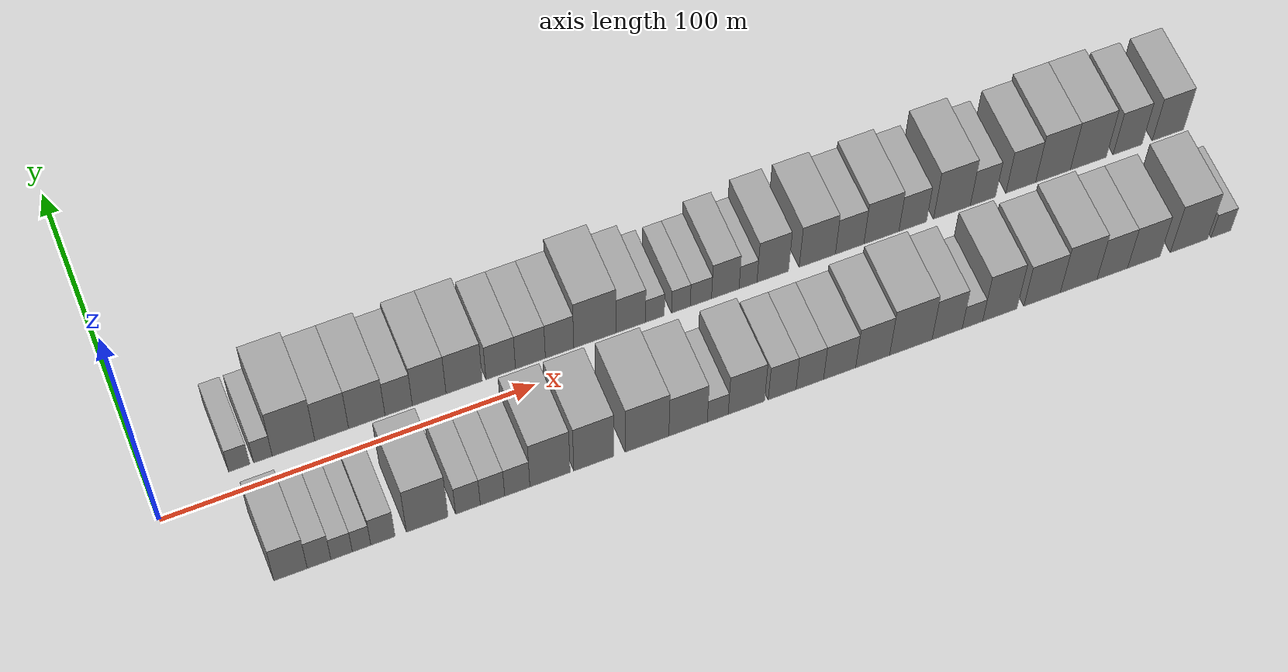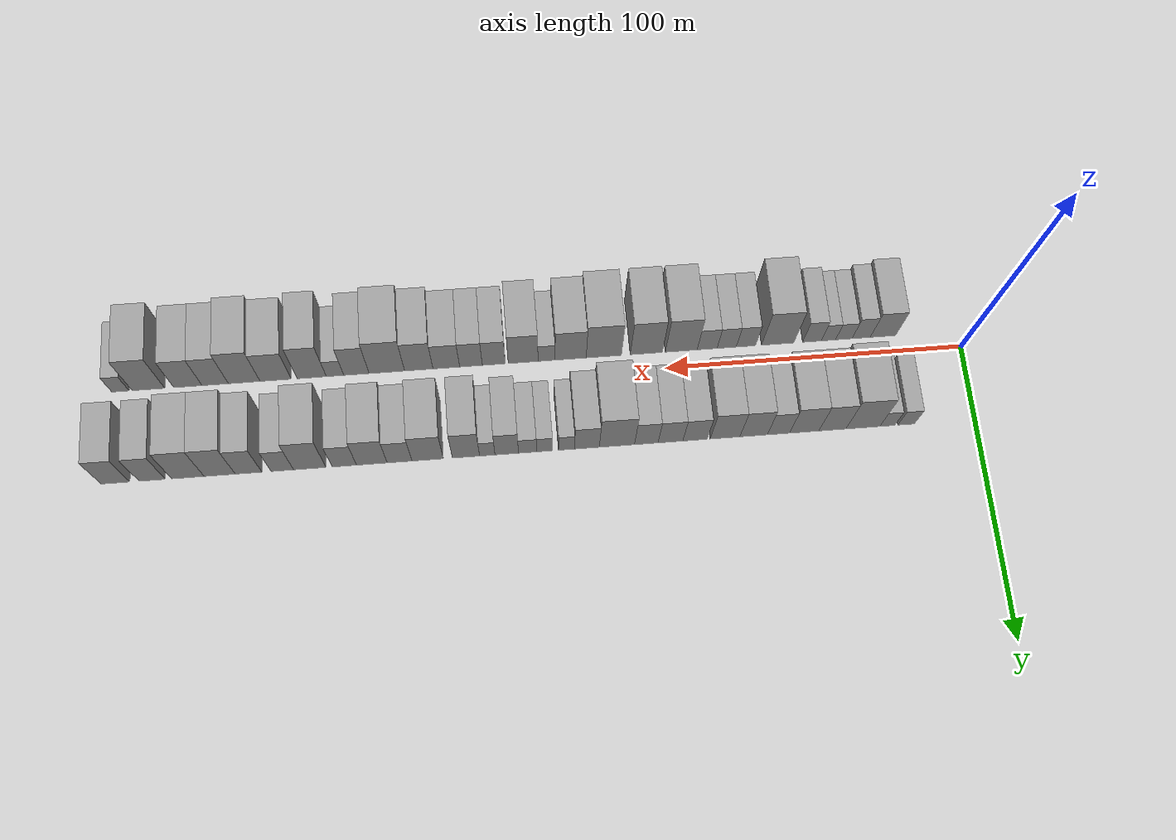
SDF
<sdf version="1.6">
 <world name="default">
  <scene>
   <sky><clouds><speed>12</speed></clouds></sky>
   <ambient>0.4 0.4 0.4 1</ambient>
   <background>0.7 0.7 0.7 1</background>
   <shadows>1</shadows>
  </scene>
  <gravity>0 0 -9.8066</gravity>
  <magnetic_field>6e-06 2.3e-05 -4.2e-05</magnetic_field>
  <physics default="0" name="default_physics" type="ode">
   <ode>
    <solver>
     <type>quick</type>
     <iters>10</iters>
     <sor>1.0</sor>
     <use_dynamic_moi_rescaling>0</use_dynamic_moi_rescaling>
    </solver>
    <constraints>
     <cfm>0</cfm>
     <erp>0.2</erp>
     <contact_max_correcting_vel>100</contact_max_correcting_vel>
     <contact_surface_layer>0.001</contact_surface_layer>
    </constraints>
   </ode>
   <max_step_size>0.004</max_step_size>
   <real_time_factor>1</real_time_factor>
   <real_time_update_rate>250</real_time_update_rate>
  </physics>
  <light name="sun" type="directional">
   <pose>0 0 10 0 0 0</pose>
   <diffuse>0.8 0.8 0.8 1</diffuse>
   <specular>0.2 0.2 0.2 1</specular>
   <attenuation>
    <range>1000</range>
    <constant>0.9</constant>
    <linear>0.01</linear>
    <quadratic>0.001</quadratic>
   </attenuation>
   <direction>-0.5 0.1 -0.9</direction>
  </light>
  <model name="building_1">
   <static>1</static>
   <pose>22.8053 16.0000 0 0.000000 0.000000 1.570796</pose>
   <link name="link">
    <pose>0 0 6.00 0 0 0</pose>
    <collision name="collision"><geometry><box><size>20.0000 5.6106 12.0000</size></box></geometry></collision>
    <visual name="visual">
     <cast_shadows>0</cast_shadows>
     <geometry><box><size>20.0000 5.6106 12.0000</size></box></geometry>
     <material>
      <script>
       <uri>model://grey_wall/materials/scripts</uri>
       <uri>model://grey_wall/materials/textures</uri>
       <name>vrc/grey_wall</name>
      </script>
     </material>
    </visual>
   </link>
  </model>
  <model name="building_2">
   <static>1</static>
   <pose>29.0822 16.0000 0 0.000000 0.000000 1.570796</pose>
   <link name="link">
    <pose>0 0 6.00 0 0 0</pose>
    <collision name="collision"><geometry><box><size>20.0000 4.9431 12.0000</size></box></geometry></collision>
    <visual name="visual">
     <cast_shadows>0</cast_shadows>
     <geometry><box><size>20.0000 4.9431 12.0000</size></box></geometry>
     <material>
      <script>
       <uri>model://grey_wall/materials/scripts</uri>
       <uri>model://grey_wall/materials/textures</uri>
       <name>vrc/grey_wall</name>
      </script>
     </material>
    </visual>
   </link>
  </model>
  <model name="building_3">
   <static>1</static>
   <pose>37.2110 16.0000 0 0.000000 0.000000 1.570796</pose>
   <link name="link">
    <pose>0 0 12.00 0 0 0</pose>
    <collision name="collision"><geometry><box><size>20.0000 11.3147 24.0000</size></box></geometry></collision>
    <visual name="visual">
     <cast_shadows>0</cast_shadows>
     <geometry><box><size>20.0000 11.3147 24.0000</size></box></geometry>
     <material>
      <script>
       <uri>model://grey_wall/materials/scripts</uri>
       <uri>model://grey_wall/materials/textures</uri>
       <name>vrc/grey_wall</name>
      </script>
     </material>
    </visual>
   </link>
  </model>
  <model name="building_4">
   <static>1</static>
   <pose>47.3726 16.0000 0 0.000000 0.000000 1.570796</pose>
   <link name="link">
    <pose>0 0 10.50 0 0 0</pose>
    <collision name="collision"><geometry><box><size>20.0000 9.0084 21.0000</size></box></geometry></collision>
    <visual name="visual">
     <cast_shadows>0</cast_shadows>
     <geometry><box><size>20.0000 9.0084 21.0000</size></box></geometry>
     <material>
      <script>
       <uri>model://grey_wall/materials/scripts</uri>
       <uri>model://grey_wall/materials/textures</uri>
       <name>vrc/grey_wall</name>
      </script>
     </material>
    </visual>
   </link>
  </model>
  <model name="building_5">
   <static>1</static>
   <pose>56.7563 16.0000 0 0.000000 0.000000 1.570796</pose>
   <link name="link">
    <pose>0 0 10.50 0 0 0</pose>
    <collision name="collision"><geometry><box><size>20.0000 9.7590 21.0000</size></box></geometry></collision>
    <visual name="visual">
     <cast_shadows>0</cast_shadows>
     <geometry><box><size>20.0000 9.7590 21.0000</size></box></geometry>
     <material>
      <script>
       <uri>model://grey_wall/materials/scripts</uri>
       <uri>model://grey_wall/materials/textures</uri>
       <name>vrc/grey_wall</name>
      </script>
     </material>
    </visual>
   </link>
  </model>
  <model name="building_6">
   <static>1</static>
   <pose>65.3125 16.0000 0 0.000000 0.000000 1.570796</pose>
   <link name="link">
    <pose>0 0 9.00 0 0 0</pose>
    <collision name="collision"><geometry><box><size>20.0000 7.3534 18.0000</size></box></geometry></collision>
    <visual name="visual">
     <cast_shadows>0</cast_shadows>
     <geometry><box><size>20.0000 7.3534 18.0000</size></box></geometry>
     <material>
      <script>
       <uri>model://grey_wall/materials/scripts</uri>
       <uri>model://grey_wall/materials/textures</uri>
       <name>vrc/grey_wall</name>
      </script>
     </material>
    </visual>
   </link>
  </model>
  <model name="building_7">
   <static>1</static>
   <pose>73.5317 16.0000 0 0.000000 0.000000 1.570796</pose>
   <link name="link">
    <pose>0 0 10.50 0 0 0</pose>
    <collision name="collision"><geometry><box><size>20.0000 9.0848 21.0000</size></box></geometry></collision>
    <visual name="visual">
     <cast_shadows>0</cast_shadows>
     <geometry><box><size>20.0000 9.0848 21.0000</size></box></geometry>
     <material>
      <script>
       <uri>model://grey_wall/materials/scripts</uri>
       <uri>model://grey_wall/materials/textures</uri>
       <name>vrc/grey_wall</name>
      </script>
     </material>
    </visual>
   </link>
  </model>
  <model name="building_8">
   <static>1</static>
   <pose>82.9801 16.0000 0 0.000000 0.000000 1.570796</pose>
   <link name="link">
    <pose>0 0 10.50 0 0 0</pose>
    <collision name="collision"><geometry><box><size>20.0000 9.8120 21.0000</size></box></geometry></collision>
    <visual name="visual">
     <cast_shadows>0</cast_shadows>
     <geometry><box><size>20.0000 9.8120 21.0000</size></box></geometry>
     <material>
      <script>
       <uri>model://grey_wall/materials/scripts</uri>
       <uri>model://grey_wall/materials/textures</uri>
       <name>vrc/grey_wall</name>
      </script>
     </material>
    </visual>
   </link>
  </model>
  <model name="building_9">
   <static>1</static>
   <pose>92.9071 16.0000 0 0.000000 0.000000 1.570796</pose>
   <link name="link">
    <pose>0 0 9.00 0 0 0</pose>
    <collision name="collision"><geometry><box><size>20.0000 8.0420 18.0000</size></box></geometry></collision>
    <visual name="visual">
     <cast_shadows>0</cast_shadows>
     <geometry><box><size>20.0000 8.0420 18.0000</size></box></geometry>
     <material>
      <script>
       <uri>model://grey_wall/materials/scripts</uri>
       <uri>model://grey_wall/materials/textures</uri>
       <name>vrc/grey_wall</name>
      </script>
     </material>
    </visual>
   </link>
  </model>
  <model name="building_10">
   <static>1</static>
   <pose>101.0149 16.0000 0 0.000000 0.000000 1.570796</pose>
   <link name="link">
    <pose>0 0 9.00 0 0 0</pose>
    <collision name="collision"><geometry><box><size>20.0000 8.1736 18.0000</size></box></geometry></collision>
    <visual name="visual">
     <cast_shadows>0</cast_shadows>
     <geometry><box><size>20.0000 8.1736 18.0000</size></box></geometry>
     <material>
      <script>
       <uri>model://grey_wall/materials/scripts</uri>
       <uri>model://grey_wall/materials/textures</uri>
       <name>vrc/grey_wall</name>
      </script>
     </material>
    </visual>
   </link>
  </model>
  <model name="building_11">
   <static>1</static>
   <pose>108.9986 16.0000 0 0.000000 0.000000 1.570796</pose>
   <link name="link">
    <pose>0 0 9.00 0 0 0</pose>
    <collision name="collision"><geometry><box><size>20.0000 7.7938 18.0000</size></box></geometry></collision>
    <visual name="visual">
     <cast_shadows>0</cast_shadows>
     <geometry><box><size>20.0000 7.7938 18.0000</size></box></geometry>
     <material>
      <script>
       <uri>model://grey_wall/materials/scripts</uri>
       <uri>model://grey_wall/materials/textures</uri>
       <name>vrc/grey_wall</name>
      </script>
     </material>
    </visual>
   </link>
  </model>
  <model name="building_12">
   <static>1</static>
   <pose>118.6879 16.0000 0 0.000000 0.000000 1.570796</pose>
   <link name="link">
    <pose>0 0 12.00 0 0 0</pose>
    <collision name="collision"><geometry><box><size>20.0000 11.5848 24.0000</size></box></geometry></collision>
    <visual name="visual">
     <cast_shadows>0</cast_shadows>
     <geometry><box><size>20.0000 11.5848 24.0000</size></box></geometry>
     <material>
      <script>
       <uri>model://grey_wall/materials/scripts</uri>
       <uri>model://grey_wall/materials/textures</uri>
       <name>vrc/grey_wall</name>
      </script>
     </material>
    </visual>
   </link>
  </model>
  <model name="building_13">
   <static>1</static>
   <pose>128.5768 16.0000 0 0.000000 0.000000 1.570796</pose>
   <link name="link">
    <pose>0 0 9.00 0 0 0</pose>
    <collision name="collision"><geometry><box><size>20.0000 8.1929 18.0000</size></box></geometry></collision>
    <visual name="visual">
     <cast_shadows>0</cast_shadows>
     <geometry><box><size>20.0000 8.1929 18.0000</size></box></geometry>
     <material>
      <script>
       <uri>model://grey_wall/materials/scripts</uri>
       <uri>model://grey_wall/materials/textures</uri>
       <name>vrc/grey_wall</name>
      </script>
     </material>
    </visual>
   </link>
  </model>
  <model name="building_14">
   <static>1</static>
   <pose>135.2847 16.0000 0 0.000000 0.000000 1.570796</pose>
   <link name="link">
    <pose>0 0 6.00 0 0 0</pose>
    <collision name="collision"><geometry><box><size>20.0000 5.2228 12.0000</size></box></geometry></collision>
    <visual name="visual">
     <cast_shadows>0</cast_shadows>
     <geometry><box><size>20.0000 5.2228 12.0000</size></box></geometry>
     <material>
      <script>
       <uri>model://grey_wall/materials/scripts</uri>
       <uri>model://grey_wall/materials/textures</uri>
       <name>vrc/grey_wall</name>
      </script>
     </material>
    </visual>
   </link>
  </model>
  <model name="building_15">
   <static>1</static>
   <pose>142.4899 16.0000 0 0.000000 0.000000 1.570796</pose>
   <link name="link">
    <pose>0 0 6.00 0 0 0</pose>
    <collision name="collision"><geometry><box><size>20.0000 5.1876 12.0000</size></box></geometry></collision>
    <visual name="visual">
     <cast_shadows>0</cast_shadows>
     <geometry><box><size>20.0000 5.1876 12.0000</size></box></geometry>
     <material>
      <script>
       <uri>model://grey_wall/materials/scripts</uri>
       <uri>model://grey_wall/materials/textures</uri>
       <name>vrc/grey_wall</name>
      </script>
     </material>
    </visual>
   </link>
  </model>
  <model name="building_16">
   <static>1</static>
   <pose>148.0569 16.0000 0 0.000000 0.000000 1.570796</pose>
   <link name="link">
    <pose>0 0 6.00 0 0 0</pose>
    <collision name="collision"><geometry><box><size>20.0000 5.9464 12.0000</size></box></geometry></collision>
    <visual name="visual">
     <cast_shadows>0</cast_shadows>
     <geometry><box><size>20.0000 5.9464 12.0000</size></box></geometry>
     <material>
      <script>
       <uri>model://grey_wall/materials/scripts</uri>
       <uri>model://grey_wall/materials/textures</uri>
       <name>vrc/grey_wall</name>
      </script>
     </material>
    </visual>
   </link>
  </model>
  <model name="building_17">
   <static>1</static>
   <pose>154.8859 16.0000 0 0.000000 0.000000 1.570796</pose>
   <link name="link">
    <pose>0 0 9.00 0 0 0</pose>
    <collision name="collision"><geometry><box><size>20.0000 7.7115 18.0000</size></box></geometry></collision>
    <visual name="visual">
     <cast_shadows>0</cast_shadows>
     <geometry><box><size>20.0000 7.7115 18.0000</size></box></geometry>
     <material>
      <script>
       <uri>model://grey_wall/materials/scripts</uri>
       <uri>model://grey_wall/materials/textures</uri>
       <name>vrc/grey_wall</name>
      </script>
     </material>
    </visual>
   </link>
  </model>
  <model name="building_18">
   <static>1</static>
   <pose>161.2550 16.0000 0 0.000000 0.000000 1.570796</pose>
   <link name="link">
    <pose>0 0 6.00 0 0 0</pose>
    <collision name="collision"><geometry><box><size>20.0000 5.0269 12.0000</size></box></geometry></collision>
    <visual name="visual">
     <cast_shadows>0</cast_shadows>
     <geometry><box><size>20.0000 5.0269 12.0000</size></box></geometry>
     <material>
      <script>
       <uri>model://grey_wall/materials/scripts</uri>
       <uri>model://grey_wall/materials/textures</uri>
       <name>vrc/grey_wall</name>
      </script>
     </material>
    </visual>
   </link>
  </model>
  <model name="building_19">
   <static>1</static>
   <pose>168.2138 16.0000 0 0.000000 0.000000 1.570796</pose>
   <link name="link">
    <pose>0 0 10.50 0 0 0</pose>
    <collision name="collision"><geometry><box><size>20.0000 8.8906 21.0000</size></box></geometry></collision>
    <visual name="visual">
     <cast_shadows>0</cast_shadows>
     <geometry><box><size>20.0000 8.8906 21.0000</size></box></geometry>
     <material>
      <script>
       <uri>model://grey_wall/materials/scripts</uri>
       <uri>model://grey_wall/materials/textures</uri>
       <name>vrc/grey_wall</name>
      </script>
     </material>
    </visual>
   </link>
  </model>
  <model name="building_20">
   <static>1</static>
   <pose>180.7869 16.0000 0 0.000000 0.000000 1.570796</pose>
   <link name="link">
    <pose>0 0 10.50 0 0 0</pose>
    <collision name="collision"><geometry><box><size>20.0000 10.2557 21.0000</size></box></geometry></collision>
    <visual name="visual">
     <cast_shadows>0</cast_shadows>
     <geometry><box><size>20.0000 10.2557 21.0000</size></box></geometry>
     <material>
      <script>
       <uri>model://grey_wall/materials/scripts</uri>
       <uri>model://grey_wall/materials/textures</uri>
       <name>vrc/grey_wall</name>
      </script>
     </material>
    </visual>
   </link>
  </model>
  <model name="building_21">
   <static>1</static>
   <pose>189.9630 16.0000 0 0.000000 0.000000 1.570796</pose>
   <link name="link">
    <pose>0 0 9.00 0 0 0</pose>
    <collision name="collision"><geometry><box><size>20.0000 8.0965 18.0000</size></box></geometry></collision>
    <visual name="visual">
     <cast_shadows>0</cast_shadows>
     <geometry><box><size>20.0000 8.0965 18.0000</size></box></geometry>
     <material>
      <script>
       <uri>model://grey_wall/materials/scripts</uri>
       <uri>model://grey_wall/materials/textures</uri>
       <name>vrc/grey_wall</name>
      </script>
     </material>
    </visual>
   </link>
  </model>
  <model name="building_22">
   <static>1</static>
   <pose>199.0164 16.0000 0 0.000000 0.000000 1.570796</pose>
   <link name="link">
    <pose>0 0 10.50 0 0 0</pose>
    <collision name="collision"><geometry><box><size>20.0000 10.0103 21.0000</size></box></geometry></collision>
    <visual name="visual">
     <cast_shadows>0</cast_shadows>
     <geometry><box><size>20.0000 10.0103 21.0000</size></box></geometry>
     <material>
      <script>
       <uri>model://grey_wall/materials/scripts</uri>
       <uri>model://grey_wall/materials/textures</uri>
       <name>vrc/grey_wall</name>
      </script>
     </material>
    </visual>
   </link>
  </model>
  <model name="building_23">
   <static>1</static>
   <pose>207.9740 16.0000 0 0.000000 0.000000 1.570796</pose>
   <link name="link">
    <pose>0 0 9.00 0 0 0</pose>
    <collision name="collision"><geometry><box><size>20.0000 7.9049 18.0000</size></box></geometry></collision>
    <visual name="visual">
     <cast_shadows>0</cast_shadows>
     <geometry><box><size>20.0000 7.9049 18.0000</size></box></geometry>
     <material>
      <script>
       <uri>model://grey_wall/materials/scripts</uri>
       <uri>model://grey_wall/materials/textures</uri>
       <name>vrc/grey_wall</name>
      </script>
     </material>
    </visual>
   </link>
  </model>
  <model name="building_24">
   <static>1</static>
   <pose>219.2132 16.0000 0 0.000000 0.000000 1.570796</pose>
   <link name="link">
    <pose>0 0 12.00 0 0 0</pose>
    <collision name="collision"><geometry><box><size>20.0000 10.5735 24.0000</size></box></geometry></collision>
    <visual name="visual">
     <cast_shadows>0</cast_shadows>
     <geometry><box><size>20.0000 10.5735 24.0000</size></box></geometry>
     <material>
      <script>
       <uri>model://grey_wall/materials/scripts</uri>
       <uri>model://grey_wall/materials/textures</uri>
       <name>vrc/grey_wall</name>
      </script>
     </material>
    </visual>
   </link>
  </model>
  <model name="building_25">
   <static>1</static>
   <pose>228.1568 16.0000 0 0.000000 0.000000 1.570796</pose>
   <link name="link">
    <pose>0 0 9.00 0 0 0</pose>
    <collision name="collision"><geometry><box><size>20.0000 7.3136 18.0000</size></box></geometry></collision>
    <visual name="visual">
     <cast_shadows>0</cast_shadows>
     <geometry><box><size>20.0000 7.3136 18.0000</size></box></geometry>
     <material>
      <script>
       <uri>model://grey_wall/materials/scripts</uri>
       <uri>model://grey_wall/materials/textures</uri>
       <name>vrc/grey_wall</name>
      </script>
     </material>
    </visual>
   </link>
  </model>
  <model name="building_26">
   <static>1</static>
   <pose>239.1227 16.0000 0 0.000000 0.000000 1.570796</pose>
   <link name="link">
    <pose>0 0 10.50 0 0 0</pose>
    <collision name="collision"><geometry><box><size>20.0000 8.6183 21.0000</size></box></geometry></collision>
    <visual name="visual">
     <cast_shadows>0</cast_shadows>
     <geometry><box><size>20.0000 8.6183 21.0000</size></box></geometry>
     <material>
      <script>
       <uri>model://grey_wall/materials/scripts</uri>
       <uri>model://grey_wall/materials/textures</uri>
       <name>vrc/grey_wall</name>
      </script>
     </material>
    </visual>
   </link>
  </model>
  <model name="building_27">
   <static>1</static>
   <pose>248.4879 16.0000 0 0.000000 0.000000 1.570796</pose>
   <link name="link">
    <pose>0 0 12.00 0 0 0</pose>
    <collision name="collision"><geometry><box><size>20.0000 10.1120 24.0000</size></box></geometry></collision>
    <visual name="visual">
     <cast_shadows>0</cast_shadows>
     <geometry><box><size>20.0000 10.1120 24.0000</size></box></geometry>
     <material>
      <script>
       <uri>model://grey_wall/materials/scripts</uri>
       <uri>model://grey_wall/materials/textures</uri>
       <name>vrc/grey_wall</name>
      </script>
     </material>
    </visual>
   </link>
  </model>
  <model name="building_28">
   <static>1</static>
   <pose>258.8197 16.0000 0 0.000000 0.000000 1.570796</pose>
   <link name="link">
    <pose>0 0 12.00 0 0 0</pose>
    <collision name="collision"><geometry><box><size>20.0000 10.5517 24.0000</size></box></geometry></collision>
    <visual name="visual">
     <cast_shadows>0</cast_shadows>
     <geometry><box><size>20.0000 10.5517 24.0000</size></box></geometry>
     <material>
      <script>
       <uri>model://grey_wall/materials/scripts</uri>
       <uri>model://grey_wall/materials/textures</uri>
       <name>vrc/grey_wall</name>
      </script>
     </material>
    </visual>
   </link>
  </model>
  <model name="building_29">
   <static>1</static>
   <pose>270.3562 16.0000 0 0.000000 0.000000 1.570796</pose>
   <link name="link">
    <pose>0 0 10.50 0 0 0</pose>
    <collision name="collision"><geometry><box><size>20.0000 8.5213 21.0000</size></box></geometry></collision>
    <visual name="visual">
     <cast_shadows>0</cast_shadows>
     <geometry><box><size>20.0000 8.5213 21.0000</size></box></geometry>
     <material>
      <script>
       <uri>model://grey_wall/materials/scripts</uri>
       <uri>model://grey_wall/materials/textures</uri>
       <name>vrc/grey_wall</name>
      </script>
     </material>
    </visual>
   </link>
  </model>
  <model name="building_30">
   <static>1</static>
   <pose>282.2523 16.0000 0 0.000000 0.000000 1.570796</pose>
   <link name="link">
    <pose>0 0 10.50 0 0 0</pose>
    <collision name="collision"><geometry><box><size>20.0000 9.2708 21.0000</size></box></geometry></collision>
    <visual name="visual">
     <cast_shadows>0</cast_shadows>
     <geometry><box><size>20.0000 9.2708 21.0000</size></box></geometry>
     <material>
      <script>
       <uri>model://grey_wall/materials/scripts</uri>
       <uri>model://grey_wall/materials/textures</uri>
       <name>vrc/grey_wall</name>
      </script>
     </material>
    </visual>
   </link>
  </model>
  <model name="building_31">
   <static>1</static>
   <pose>25.3583 -16.0000 0 0.000000 0.000000 1.570796</pose>
   <link name="link">
    <pose>0 0 9.00 0 0 0</pose>
    <collision name="collision"><geometry><box><size>20.0000 8.7166 18.0000</size></box></geometry></collision>
    <visual name="visual">
     <cast_shadows>0</cast_shadows>
     <geometry><box><size>20.0000 8.7166 18.0000</size></box></geometry>
     <material>
      <script>
       <uri>model://grey_wall/materials/scripts</uri>
       <uri>model://grey_wall/materials/textures</uri>
       <name>vrc/grey_wall</name>
      </script>
     </material>
    </visual>
   </link>
  </model>
  <model name="building_32">
   <static>1</static>
   <pose>32.8021 -16.0000 0 0.000000 0.000000 1.570796</pose>
   <link name="link">
    <pose>0 0 7.50 0 0 0</pose>
    <collision name="collision"><geometry><box><size>20.0000 6.1711 15.0000</size></box></geometry></collision>
    <visual name="visual">
     <cast_shadows>0</cast_shadows>
     <geometry><box><size>20.0000 6.1711 15.0000</size></box></geometry>
     <material>
      <script>
       <uri>model://grey_wall/materials/scripts</uri>
       <uri>model://grey_wall/materials/textures</uri>
       <name>vrc/grey_wall</name>
      </script>
     </material>
    </visual>
   </link>
  </model>
  <model name="building_33">
   <static>1</static>
   <pose>38.6940 -16.0000 0 0.000000 0.000000 1.570796</pose>
   <link name="link">
    <pose>0 0 6.00 0 0 0</pose>
    <collision name="collision"><geometry><box><size>20.0000 5.6126 12.0000</size></box></geometry></collision>
    <visual name="visual">
     <cast_shadows>0</cast_shadows>
     <geometry><box><size>20.0000 5.6126 12.0000</size></box></geometry>
     <material>
      <script>
       <uri>model://grey_wall/materials/scripts</uri>
       <uri>model://grey_wall/materials/textures</uri>
       <name>vrc/grey_wall</name>
      </script>
     </material>
    </visual>
   </link>
  </model>
  <model name="building_34">
   <static>1</static>
   <pose>43.9204 -16.0000 0 0.000000 0.000000 1.570796</pose>
   <link name="link">
    <pose>0 0 6.00 0 0 0</pose>
    <collision name="collision"><geometry><box><size>20.0000 4.8401 12.0000</size></box></geometry></collision>
    <visual name="visual">
     <cast_shadows>0</cast_shadows>
     <geometry><box><size>20.0000 4.8401 12.0000</size></box></geometry>
     <material>
      <script>
       <uri>model://grey_wall/materials/scripts</uri>
       <uri>model://grey_wall/materials/textures</uri>
       <name>vrc/grey_wall</name>
      </script>
     </material>
    </visual>
   </link>
  </model>
  <model name="building_35">
   <static>1</static>
   <pose>49.5244 -16.0000 0 0.000000 0.000000 1.570796</pose>
   <link name="link">
    <pose>0 0 7.50 0 0 0</pose>
    <collision name="collision"><geometry><box><size>20.0000 6.3680 15.0000</size></box></geometry></collision>
    <visual name="visual">
     <cast_shadows>0</cast_shadows>
     <geometry><box><size>20.0000 6.3680 15.0000</size></box></geometry>
     <material>
      <script>
       <uri>model://grey_wall/materials/scripts</uri>
       <uri>model://grey_wall/materials/textures</uri>
       <name>vrc/grey_wall</name>
      </script>
     </material>
    </visual>
   </link>
  </model>
  <model name="building_36">
   <static>1</static>
   <pose>61.2098 -16.0000 0 0.000000 0.000000 1.570796</pose>
   <link name="link">
    <pose>0 0 12.00 0 0 0</pose>
    <collision name="collision"><geometry><box><size>20.0000 11.0026 24.0000</size></box></geometry></collision>
    <visual name="visual">
     <cast_shadows>0</cast_shadows>
     <geometry><box><size>20.0000 11.0026 24.0000</size></box></geometry>
     <material>
      <script>
       <uri>model://grey_wall/materials/scripts</uri>
       <uri>model://grey_wall/materials/textures</uri>
       <name>vrc/grey_wall</name>
      </script>
     </material>
    </visual>
   </link>
  </model>
  <model name="building_37">
   <static>1</static>
   <pose>71.9960 -16.0000 0 0.000000 0.000000 1.570796</pose>
   <link name="link">
    <pose>0 0 7.50 0 0 0</pose>
    <collision name="collision"><geometry><box><size>20.0000 6.5698 15.0000</size></box></geometry></collision>
    <visual name="visual">
     <cast_shadows>0</cast_shadows>
     <geometry><box><size>20.0000 6.5698 15.0000</size></box></geometry>
     <material>
      <script>
       <uri>model://grey_wall/materials/scripts</uri>
       <uri>model://grey_wall/materials/textures</uri>
       <name>vrc/grey_wall</name>
      </script>
     </material>
    </visual>
   </link>
  </model>
  <model name="building_38">
   <static>1</static>
   <pose>78.5247 -16.0000 0 0.000000 0.000000 1.570796</pose>
   <link name="link">
    <pose>0 0 7.50 0 0 0</pose>
    <collision name="collision"><geometry><box><size>20.0000 6.4875 15.0000</size></box></geometry></collision>
    <visual name="visual">
     <cast_shadows>0</cast_shadows>
     <geometry><box><size>20.0000 6.4875 15.0000</size></box></geometry>
     <material>
      <script>
       <uri>model://grey_wall/materials/scripts</uri>
       <uri>model://grey_wall/materials/textures</uri>
       <name>vrc/grey_wall</name>
      </script>
     </material>
    </visual>
   </link>
  </model>
  <model name="building_39">
   <static>1</static>
   <pose>85.1431 -16.0000 0 0.000000 0.000000 1.570796</pose>
   <link name="link">
    <pose>0 0 7.50 0 0 0</pose>
    <collision name="collision"><geometry><box><size>20.0000 6.7493 15.0000</size></box></geometry></collision>
    <visual name="visual">
     <cast_shadows>0</cast_shadows>
     <geometry><box><size>20.0000 6.7493 15.0000</size></box></geometry>
     <material>
      <script>
       <uri>model://grey_wall/materials/scripts</uri>
       <uri>model://grey_wall/materials/textures</uri>
       <name>vrc/grey_wall</name>
      </script>
     </material>
    </visual>
   </link>
  </model>
  <model name="building_40">
   <static>1</static>
   <pose>93.9076 -16.0000 0 0.000000 0.000000 1.570796</pose>
   <link name="link">
    <pose>0 0 12.00 0 0 0</pose>
    <collision name="collision"><geometry><box><size>20.0000 10.7797 24.0000</size></box></geometry></collision>
    <visual name="visual">
     <cast_shadows>0</cast_shadows>
     <geometry><box><size>20.0000 10.7797 24.0000</size></box></geometry>
     <material>
      <script>
       <uri>model://grey_wall/materials/scripts</uri>
       <uri>model://grey_wall/materials/textures</uri>
       <name>vrc/grey_wall</name>
      </script>
     </material>
    </visual>
   </link>
  </model>
  <model name="building_41">
   <static>1</static>
   <pose>105.7186 -16.0000 0 0.000000 0.000000 1.570796</pose>
   <link name="link">
    <pose>0 0 12.00 0 0 0</pose>
    <collision name="collision"><geometry><box><size>20.0000 10.8423 24.0000</size></box></geometry></collision>
    <visual name="visual">
     <cast_shadows>0</cast_shadows>
     <geometry><box><size>20.0000 10.8423 24.0000</size></box></geometry>
     <material>
      <script>
       <uri>model://grey_wall/materials/scripts</uri>
       <uri>model://grey_wall/materials/textures</uri>
       <name>vrc/grey_wall</name>
      </script>
     </material>
    </visual>
   </link>
  </model>
  <model name="building_42">
   <static>1</static>
   <pose>120.0721 -16.0000 0 0.000000 0.000000 1.570796</pose>
   <link name="link">
    <pose>0 0 12.00 0 0 0</pose>
    <collision name="collision"><geometry><box><size>20.0000 11.8647 24.0000</size></box></geometry></collision>
    <visual name="visual">
     <cast_shadows>0</cast_shadows>
     <geometry><box><size>20.0000 11.8647 24.0000</size></box></geometry>
     <material>
      <script>
       <uri>model://grey_wall/materials/scripts</uri>
       <uri>model://grey_wall/materials/textures</uri>
       <name>vrc/grey_wall</name>
      </script>
     </material>
    </visual>
   </link>
  </model>
  <model name="building_43">
   <static>1</static>
   <pose>131.2455 -16.0000 0 0.000000 0.000000 1.570796</pose>
   <link name="link">
    <pose>0 0 10.50 0 0 0</pose>
    <collision name="collision"><geometry><box><size>20.0000 10.4822 21.0000</size></box></geometry></collision>
    <visual name="visual">
     <cast_shadows>0</cast_shadows>
     <geometry><box><size>20.0000 10.4822 21.0000</size></box></geometry>
     <material>
      <script>
       <uri>model://grey_wall/materials/scripts</uri>
       <uri>model://grey_wall/materials/textures</uri>
       <name>vrc/grey_wall</name>
      </script>
     </material>
    </visual>
   </link>
  </model>
  <model name="building_44">
   <static>1</static>
   <pose>139.3521 -16.0000 0 0.000000 0.000000 1.570796</pose>
   <link name="link">
    <pose>0 0 6.00 0 0 0</pose>
    <collision name="collision"><geometry><box><size>20.0000 5.7310 12.0000</size></box></geometry></collision>
    <visual name="visual">
     <cast_shadows>0</cast_shadows>
     <geometry><box><size>20.0000 5.7310 12.0000</size></box></geometry>
     <material>
      <script>
       <uri>model://grey_wall/materials/scripts</uri>
       <uri>model://grey_wall/materials/textures</uri>
       <name>vrc/grey_wall</name>
      </script>
     </material>
    </visual>
   </link>
  </model>
  <model name="building_45">
   <static>1</static>
   <pose>147.2259 -16.0000 0 0.000000 0.000000 1.570796</pose>
   <link name="link">
    <pose>0 0 10.50 0 0 0</pose>
    <collision name="collision"><geometry><box><size>20.0000 10.0165 21.0000</size></box></geometry></collision>
    <visual name="visual">
     <cast_shadows>0</cast_shadows>
     <geometry><box><size>20.0000 10.0165 21.0000</size></box></geometry>
     <material>
      <script>
       <uri>model://grey_wall/materials/scripts</uri>
       <uri>model://grey_wall/materials/textures</uri>
       <name>vrc/grey_wall</name>
      </script>
     </material>
    </visual>
   </link>
  </model>
  <model name="building_46">
   <static>1</static>
   <pose>157.0768 -16.0000 0 0.000000 0.000000 1.570796</pose>
   <link name="link">
    <pose>0 0 9.00 0 0 0</pose>
    <collision name="collision"><geometry><box><size>20.0000 7.6852 18.0000</size></box></geometry></collision>
    <visual name="visual">
     <cast_shadows>0</cast_shadows>
     <geometry><box><size>20.0000 7.6852 18.0000</size></box></geometry>
     <material>
      <script>
       <uri>model://grey_wall/materials/scripts</uri>
       <uri>model://grey_wall/materials/textures</uri>
       <name>vrc/grey_wall</name>
      </script>
     </material>
    </visual>
   </link>
  </model>
  <model name="building_47">
   <static>1</static>
   <pose>164.7300 -16.0000 0 0.000000 0.000000 1.570796</pose>
   <link name="link">
    <pose>0 0 9.00 0 0 0</pose>
    <collision name="collision"><geometry><box><size>20.0000 7.6213 18.0000</size></box></geometry></collision>
    <visual name="visual">
     <cast_shadows>0</cast_shadows>
     <geometry><box><size>20.0000 7.6213 18.0000</size></box></geometry>
     <material>
      <script>
       <uri>model://grey_wall/materials/scripts</uri>
       <uri>model://grey_wall/materials/textures</uri>
       <name>vrc/grey_wall</name>
      </script>
     </material>
    </visual>
   </link>
  </model>
  <model name="building_48">
   <static>1</static>
   <pose>173.0088 -16.0000 0 0.000000 0.000000 1.570796</pose>
   <link name="link">
    <pose>0 0 9.00 0 0 0</pose>
    <collision name="collision"><geometry><box><size>20.0000 8.9361 18.0000</size></box></geometry></collision>
    <visual name="visual">
     <cast_shadows>0</cast_shadows>
     <geometry><box><size>20.0000 8.9361 18.0000</size></box></geometry>
     <material>
      <script>
       <uri>model://grey_wall/materials/scripts</uri>
       <uri>model://grey_wall/materials/textures</uri>
       <name>vrc/grey_wall</name>
      </script>
     </material>
    </visual>
   </link>
  </model>
  <model name="building_49">
   <static>1</static>
   <pose>182.2193 -16.0000 0 0.000000 0.000000 1.570796</pose>
   <link name="link">
    <pose>0 0 10.50 0 0 0</pose>
    <collision name="collision"><geometry><box><size>20.0000 9.4849 21.0000</size></box></geometry></collision>
    <visual name="visual">
     <cast_shadows>0</cast_shadows>
     <geometry><box><size>20.0000 9.4849 21.0000</size></box></geometry>
     <material>
      <script>
       <uri>model://grey_wall/materials/scripts</uri>
       <uri>model://grey_wall/materials/textures</uri>
       <name>vrc/grey_wall</name>
      </script>
     </material>
    </visual>
   </link>
  </model>
  <model name="building_50">
   <static>1</static>
   <pose>192.9037 -16.0000 0 0.000000 0.000000 1.570796</pose>
   <link name="link">
    <pose>0 0 12.00 0 0 0</pose>
    <collision name="collision"><geometry><box><size>20.0000 11.8839 24.0000</size></box></geometry></collision>
    <visual name="visual">
     <cast_shadows>0</cast_shadows>
     <geometry><box><size>20.0000 11.8839 24.0000</size></box></geometry>
     <material>
      <script>
       <uri>model://grey_wall/materials/scripts</uri>
       <uri>model://grey_wall/materials/textures</uri>
       <name>vrc/grey_wall</name>
      </script>
     </material>
    </visual>
   </link>
  </model>
  <model name="building_51">
   <static>1</static>
   <pose>203.0953 -16.0000 0 0.000000 0.000000 1.570796</pose>
   <link name="link">
    <pose>0 0 10.50 0 0 0</pose>
    <collision name="collision"><geometry><box><size>20.0000 8.4993 21.0000</size></box></geometry></collision>
    <visual name="visual">
     <cast_shadows>0</cast_shadows>
     <geometry><box><size>20.0000 8.4993 21.0000</size></box></geometry>
     <material>
      <script>
       <uri>model://grey_wall/materials/scripts</uri>
       <uri>model://grey_wall/materials/textures</uri>
       <name>vrc/grey_wall</name>
      </script>
     </material>
    </visual>
   </link>
  </model>
  <model name="building_52">
   <static>1</static>
   <pose>210.2401 -16.0000 0 0.000000 0.000000 1.570796</pose>
   <link name="link">
    <pose>0 0 6.00 0 0 0</pose>
    <collision name="collision"><geometry><box><size>20.0000 5.7902 12.0000</size></box></geometry></collision>
    <visual name="visual">
     <cast_shadows>0</cast_shadows>
     <geometry><box><size>20.0000 5.7902 12.0000</size></box></geometry>
     <material>
      <script>
       <uri>model://grey_wall/materials/scripts</uri>
       <uri>model://grey_wall/materials/textures</uri>
       <name>vrc/grey_wall</name>
      </script>
     </material>
    </visual>
   </link>
  </model>
  <model name="building_53">
   <static>1</static>
   <pose>217.9878 -16.0000 0 0.000000 0.000000 1.570796</pose>
   <link name="link">
    <pose>0 0 12.00 0 0 0</pose>
    <collision name="collision"><geometry><box><size>20.0000 9.7052 24.0000</size></box></geometry></collision>
    <visual name="visual">
     <cast_shadows>0</cast_shadows>
     <geometry><box><size>20.0000 9.7052 24.0000</size></box></geometry>
     <material>
      <script>
       <uri>model://grey_wall/materials/scripts</uri>
       <uri>model://grey_wall/materials/textures</uri>
       <name>vrc/grey_wall</name>
      </script>
     </material>
    </visual>
   </link>
  </model>
  <model name="building_54">
   <static>1</static>
   <pose>230.0299 -16.0000 0 0.000000 0.000000 1.570796</pose>
   <link name="link">
    <pose>0 0 10.50 0 0 0</pose>
    <collision name="collision"><geometry><box><size>20.0000 10.3791 21.0000</size></box></geometry></collision>
    <visual name="visual">
     <cast_shadows>0</cast_shadows>
     <geometry><box><size>20.0000 10.3791 21.0000</size></box></geometry>
     <material>
      <script>
       <uri>model://grey_wall/materials/scripts</uri>
       <uri>model://grey_wall/materials/textures</uri>
       <name>vrc/grey_wall</name>
      </script>
     </material>
    </visual>
   </link>
  </model>
  <model name="building_55">
   <static>1</static>
   <pose>240.4846 -16.0000 0 0.000000 0.000000 1.570796</pose>
   <link name="link">
    <pose>0 0 12.00 0 0 0</pose>
    <collision name="collision"><geometry><box><size>20.0000 10.5303 24.0000</size></box></geometry></collision>
    <visual name="visual">
     <cast_shadows>0</cast_shadows>
     <geometry><box><size>20.0000 10.5303 24.0000</size></box></geometry>
     <material>
      <script>
       <uri>model://grey_wall/materials/scripts</uri>
       <uri>model://grey_wall/materials/textures</uri>
       <name>vrc/grey_wall</name>
      </script>
     </material>
    </visual>
   </link>
  </model>
  <model name="building_56">
   <static>1</static>
   <pose>250.1376 -16.0000 0 0.000000 0.000000 1.570796</pose>
   <link name="link">
    <pose>0 0 10.50 0 0 0</pose>
    <collision name="collision"><geometry><box><size>20.0000 8.7756 21.0000</size></box></geometry></collision>
    <visual name="visual">
     <cast_shadows>0</cast_shadows>
     <geometry><box><size>20.0000 8.7756 21.0000</size></box></geometry>
     <material>
      <script>
       <uri>model://grey_wall/materials/scripts</uri>
       <uri>model://grey_wall/materials/textures</uri>
       <name>vrc/grey_wall</name>
      </script>
     </material>
    </visual>
   </link>
  </model>
  <model name="building_57">
   <static>1</static>
   <pose>259.2182 -16.0000 0 0.000000 0.000000 1.570796</pose>
   <link name="link">
    <pose>0 0 10.50 0 0 0</pose>
    <collision name="collision"><geometry><box><size>20.0000 9.3856 21.0000</size></box></geometry></collision>
    <visual name="visual">
     <cast_shadows>0</cast_shadows>
     <geometry><box><size>20.0000 9.3856 21.0000</size></box></geometry>
     <material>
      <script>
       <uri>model://grey_wall/materials/scripts</uri>
       <uri>model://grey_wall/materials/textures</uri>
       <name>vrc/grey_wall</name>
      </script>
     </material>
    </visual>
   </link>
  </model>
  <model name="building_58">
   <static>1</static>
   <pose>272.3187 -16.0000 0 0.000000 0.000000 1.570796</pose>
   <link name="link">
    <pose>0 0 12.00 0 0 0</pose>
    <collision name="collision"><geometry><box><size>20.0000 10.8154 24.0000</size></box></geometry></collision>
    <visual name="visual">
     <cast_shadows>0</cast_shadows>
     <geometry><box><size>20.0000 10.8154 24.0000</size></box></geometry>
     <material>
      <script>
       <uri>model://grey_wall/materials/scripts</uri>
       <uri>model://grey_wall/materials/textures</uri>
       <name>vrc/grey_wall</name>
      </script>
     </material>
    </visual>
   </link>
  </model>
  <model name="building_59">
   <static>1</static>
   <pose>281.5912 -16.0000 0 0.000000 0.000000 1.570796</pose>
   <link name="link">
    <pose>0 0 6.00 0 0 0</pose>
    <collision name="collision"><geometry><box><size>20.0000 5.7297 12.0000</size></box></geometry></collision>
    <visual name="visual">
     <cast_shadows>0</cast_shadows>
     <geometry><box><size>20.0000 5.7297 12.0000</size></box></geometry>
     <material>
      <script>
       <uri>model://grey_wall/materials/scripts</uri>
       <uri>model://grey_wall/materials/textures</uri>
       <name>vrc/grey_wall</name>
      </script>
     </material>
    </visual>
   </link>
  </model>
 </world>
</sdf>
